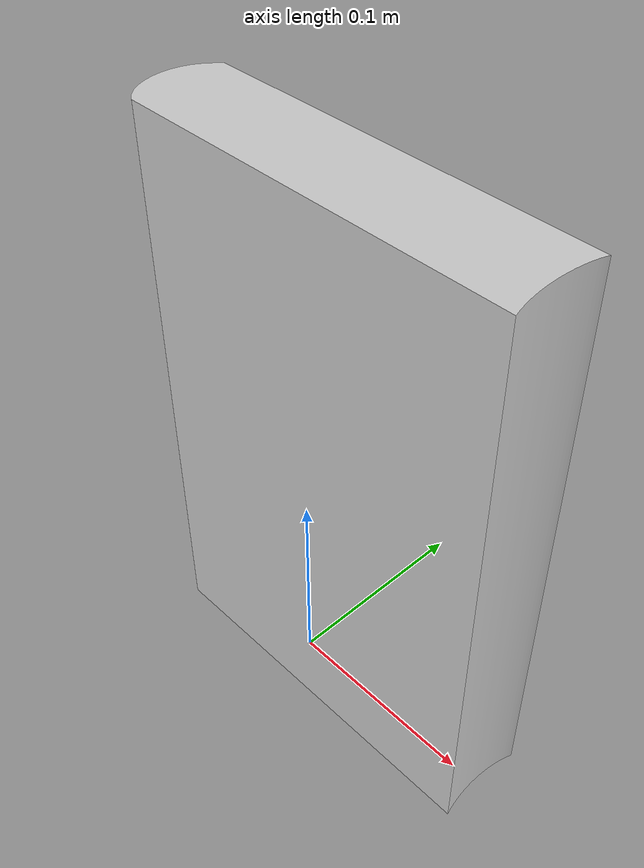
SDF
<?xml version="1.0" ?>
<sdf version="1.5">
  <model name="book1">
    <static>true</static>
    <link name="body">
      <visual name="visual">
        <geometry>
          <mesh><uri>model://book1/model.dae</uri></mesh>
        </geometry>
      </visual>
    </link>
  </model>
</sdf>
